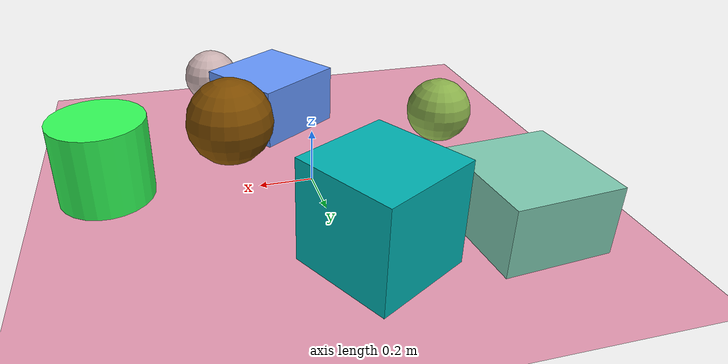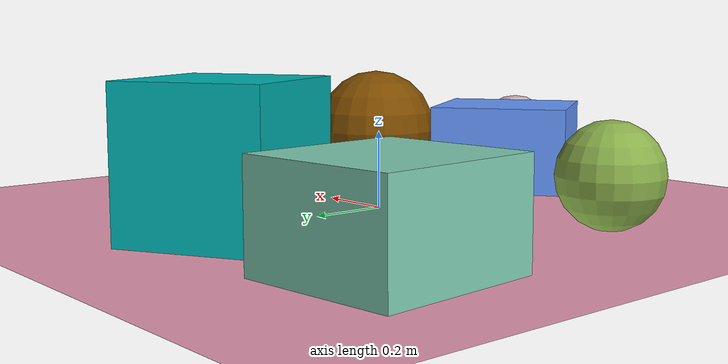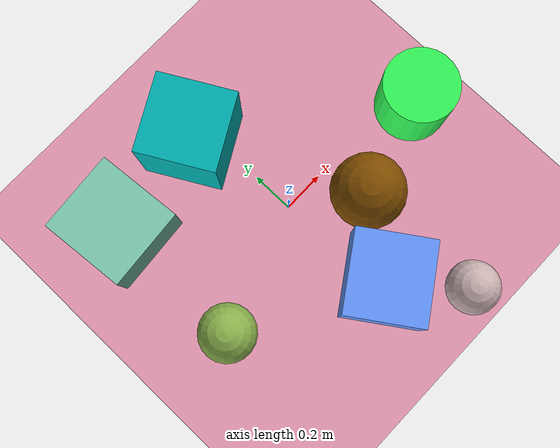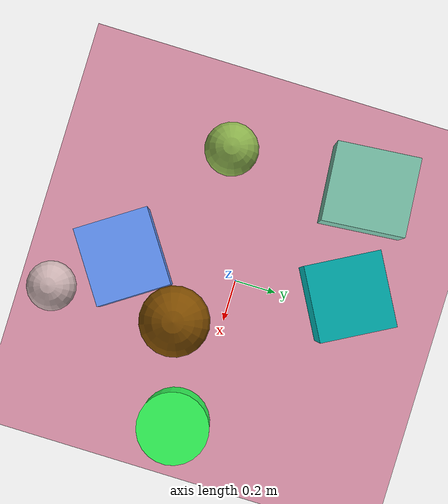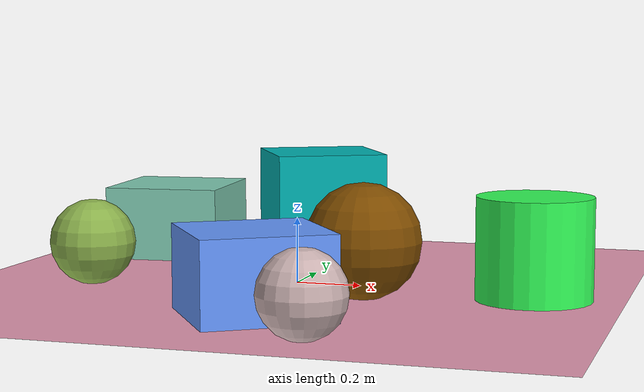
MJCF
<mujoco>
   <asset>
<texture type="skybox" builtin="gradient" rgb1="0.8 0.9 1.0" rgb2="0.4 0.5 0.9" width="500" height="500"/>
<texture name="checker_0" builtin="checker" rgb1="0.9 0.7 0.6" rgb2="0.7 0.7 0.8" width="500" height="500"/>
<texture name="flat_1" builtin="flat" rgb1="0.0 0.7 0.7" rgb2="0.0 0.7 0.7"  width="500" height="500"/>
<texture name="gradient_2" builtin="gradient" rgb1="0.2 0.4 0.0" rgb2="0.8 0.2 0.0" width="500" height="500"/>
<texture name="checker_3" builtin="checker" rgb1="0.9 0.9 0.5" rgb2="0.2 0.5 0.1" width="500" height="500"/>
<texture name="gradient_4" builtin="gradient" rgb1="0.8 0.9 1.0" rgb2="0.0 0.3 1.0" width="500" height="500"/>
<texture name="checker_5" builtin="checker" rgb1="0.3 1.0 0.6" rgb2="0.1 1.0 0.1" width="500" height="500"/>
<texture name="flat_6" builtin="flat" rgb1="0.5 0.8 0.7" rgb2="0.5 0.8 0.7"  width="500" height="500"/><material name="checker_0_mat" reflectance="0.5273988755899942" texrepeat="8 8" texture="checker_0" texuniform="false" />
<material name="flat_1_mat" reflectance="0.3268958053833646" texture="flat_1" texuniform="true"/>
<material name="gradient_2_mat" reflectance="0.4491270177391963" texture="gradient_2" texuniform="true"/>
<material name="checker_3_mat" reflectance="0.04618051610272789" texrepeat="8 8" texture="checker_3" texuniform="false" />
<material name="gradient_4_mat" reflectance="0.9169974584884899" texture="gradient_4" texuniform="true"/>
<material name="checker_5_mat" reflectance="0.12912551900921143" texrepeat="3 3" texture="checker_5" texuniform="false" />
<material name="flat_6_mat" reflectance="0.2605224609129987" texture="flat_6" texuniform="true"/>
   </asset>

   <worldbody>
     <geom type="plane" size="1 1 0.1" rgba="0.9 0.6 0.7 1" />
<light pos="0.45042944835781507 -0.29455456760565446 2" dir="0 0 -1" cutoff="90" diffuse="1 1 1" specular="1 1 1"/>
<geom type="sphere" pos="0.28 -0.83 0.12" size="0.12 0.12 0.12" material="checker_0_mat" euler="0 0 3" />
<geom type="box" pos="-0.08 0.52 0.18" size="0.18 0.18 0.18" material="flat_1_mat" euler="0 0 29" />
<geom type="sphere" pos="0.27 -0.22 0.17" size="0.17 0.17 0.17" material="gradient_2_mat" euler="0 0 4" />
<geom type="sphere" pos="-0.59 -0.2 0.13" size="0.13 0.13 0.13" material="checker_3_mat" euler="0 0 77" />
<geom type="box" pos="0.05 -0.54 0.12" size="0.19 0.18 0.12" material="gradient_4_mat" euler="0 0 34" />
<geom type="cylinder" pos="0.74 -0.08 0.15" size="0.17 0.15 0.15" material="checker_5_mat" euler="0 0 35" />
<geom type="box" pos="-0.59 0.48 0.12" size="0.19 0.2 0.12" material="flat_6_mat" euler="0 0 5" /><camera euler="60 0 180" fovy="60" name="camera1" pos="-0.2 -1.5 1"></camera>   </worldbody>
   <visual>
      <headlight diffuse="0.7 0.7 0.7"/>
   </visual>
</mujoco>
